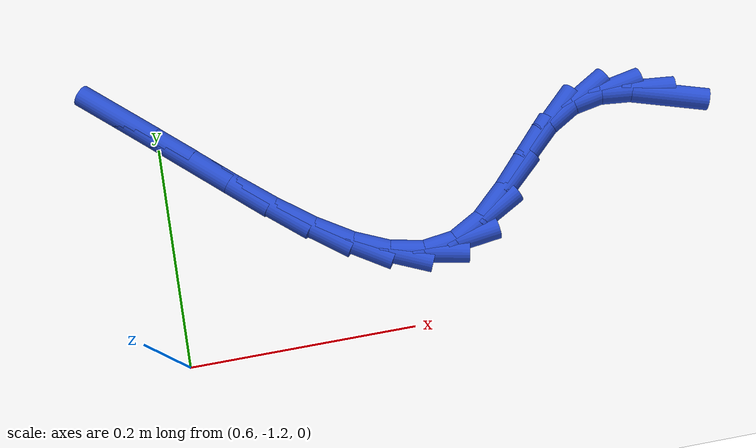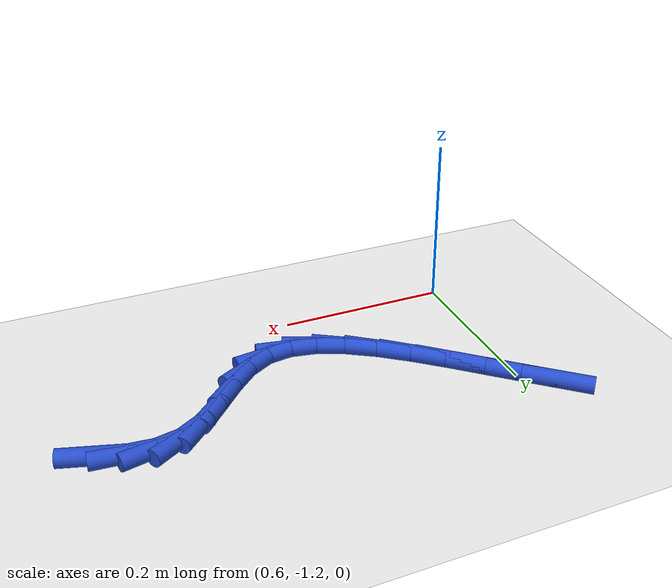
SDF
<sdf version="1.6">
 <world name="default">
  <model name="ground_plane">
   <static>1</static>
   <link name="link">
    <collision name="collision">
     <geometry><plane><normal>0 0 1</normal><size>100 100</size></plane></geometry>
     <surface><friction><ode><mu>100</mu><mu2>50</mu2></ode></friction></surface>
    </collision>
    <visual name="visual">
     <cast_shadows>0</cast_shadows>
     <geometry><plane><normal>0 0 1</normal><size>100 100</size></plane></geometry>
     <material>
      <script><uri>file://media/materials/scripts/gazebo.material</uri><name>Gazebo/WhiteGlow</name></script>
     </material>
    </visual>
   </link>
  </model>
  <model name="line">
   <link name="link_159">
    <pose>1.0616783317139773 -1.034577627770227 0.01 0 1.57 -0.29383155526071275</pose>
    <collision name="collision">
     <geometry><cylinder><radius>0.01</radius><length>0.08</length></cylinder></geometry>
    </collision>
    <visual name="visual">
     <material>
      <script><name>Gazebo/Blue</name><uri>file://media/materials/scripts/gazebo.material</uri></script>
     </material>
     <geometry><cylinder><radius>0.01</radius><length>0.08</length></cylinder></geometry>
    </visual>
   </link>
   <link name="link_160">
    <pose>1.0322120503001326 -1.0256614156718258 0.01 0 1.57 -0.09149893897382105</pose>
    <collision name="collision">
     <geometry><cylinder><radius>0.01</radius><length>0.08</length></cylinder></geometry>
    </collision>
    <visual name="visual">
     <material>
      <script><name>Gazebo/Blue</name><uri>file://media/materials/scripts/gazebo.material</uri></script>
     </material>
     <geometry><cylinder><radius>0.01</radius><length>0.08</length></cylinder></geometry>
    </visual>
   </link>
   <link name="link_161">
    <pose>1.0040524790558807 -1.0230776302213247 0.01 0 1.57 0.20191646864929344</pose>
    <collision name="collision">
     <geometry><cylinder><radius>0.01</radius><length>0.08</length></cylinder></geometry>
    </collision>
    <visual name="visual">
     <material>
      <script><name>Gazebo/Blue</name><uri>file://media/materials/scripts/gazebo.material</uri></script>
     </material>
     <geometry><cylinder><radius>0.01</radius><length>0.08</length></cylinder></geometry>
    </visual>
   </link>
   <link name="link_162">
    <pose>0.9771210370044172 -1.0285906588683793 0.01 0 1.57 0.5358832553762123</pose>
    <collision name="collision">
     <geometry><cylinder><radius>0.01</radius><length>0.08</length></cylinder></geometry>
    </collision>
    <visual name="visual">
     <material>
      <script><name>Gazebo/Blue</name><uri>file://media/materials/scripts/gazebo.material</uri></script>
     </material>
     <geometry><cylinder><radius>0.01</radius><length>0.08</length></cylinder></geometry>
    </visual>
   </link>
   <link name="link_163">
    <pose>0.9513337227911665 -1.0439043886385309 0.01 0 1.57 0.7615660706830352</pose>
    <collision name="collision">
     <geometry><cylinder><radius>0.01</radius><length>0.08</length></cylinder></geometry>
    </collision>
    <visual name="visual">
     <material>
      <script><name>Gazebo/Blue</name><uri>file://media/materials/scripts/gazebo.material</uri></script>
     </material>
     <geometry><cylinder><radius>0.01</radius><length>0.08</length></cylinder></geometry>
    </visual>
   </link>
   <link name="link_164">
    <pose>0.9263388930255073 -1.0677353766381315 0.01 0 1.57 0.8208064459904556</pose>
    <collision name="collision">
     <geometry><cylinder><radius>0.01</radius><length>0.08</length></cylinder></geometry>
    </collision>
    <visual name="visual">
     <material>
      <script><name>Gazebo/Blue</name><uri>file://media/materials/scripts/gazebo.material</uri></script>
     </material>
     <geometry><cylinder><radius>0.01</radius><length>0.08</length></cylinder></geometry>
    </visual>
   </link>
   <link name="link_165">
    <pose>0.9014001611391713 -1.094505806702501 0.01 0 1.57 0.7480122158365172</pose>
    <collision name="collision">
     <geometry><cylinder><radius>0.01</radius><length>0.08</length></cylinder></geometry>
    </collision>
    <visual name="visual">
     <material>
      <script><name>Gazebo/Blue</name><uri>file://media/materials/scripts/gazebo.material</uri></script>
     </material>
     <geometry><cylinder><radius>0.01</radius><length>0.08</length></cylinder></geometry>
    </visual>
   </link>
   <link name="link_166">
    <pose>0.8757513286304951 -1.1183051119455532 0.01 0 1.57 0.5062367291940696</pose>
    <collision name="collision">
     <geometry><cylinder><radius>0.01</radius><length>0.08</length></cylinder></geometry>
    </collision>
    <visual name="visual">
     <material>
      <script><name>Gazebo/Blue</name><uri>file://media/materials/scripts/gazebo.material</uri></script>
     </material>
     <geometry><cylinder><radius>0.01</radius><length>0.08</length></cylinder></geometry>
    </visual>
   </link>
   <link name="link_167">
    <pose>0.8486427102559426 -1.133334898223849 0.01 0 1.57 0.13305660448783968</pose>
    <collision name="collision">
     <geometry><cylinder><radius>0.01</radius><length>0.08</length></cylinder></geometry>
    </collision>
    <visual name="visual">
     <material>
      <script><name>Gazebo/Blue</name><uri>file://media/materials/scripts/gazebo.material</uri></script>
     </material>
     <geometry><cylinder><radius>0.01</radius><length>0.08</length></cylinder></geometry>
    </visual>
   </link>
   <link name="link_168">
    <pose>0.8198244632427631 -1.1371921462138563 0.01 0 1.57 -0.18963404579309756</pose>
    <collision name="collision">
     <geometry><cylinder><radius>0.01</radius><length>0.08</length></cylinder></geometry>
    </collision>
    <visual name="visual">
     <material>
      <script><name>Gazebo/Blue</name><uri>file://media/materials/scripts/gazebo.material</uri></script>
     </material>
     <geometry><cylinder><radius>0.01</radius><length>0.08</length></cylinder></geometry>
    </visual>
   </link>
   <link name="link_169">
    <pose>0.7896240591674941 -1.1313954693450134 0.01 0 1.57 -0.4138564425477237</pose>
    <collision name="collision">
     <geometry><cylinder><radius>0.01</radius><length>0.08</length></cylinder></geometry>
    </collision>
    <visual name="visual">
     <material>
      <script><name>Gazebo/Blue</name><uri>file://media/materials/scripts/gazebo.material</uri></script>
     </material>
     <geometry><cylinder><radius>0.01</radius><length>0.08</length></cylinder></geometry>
    </visual>
   </link>
   <link name="link_170">
    <pose>0.7584010781595942 -1.1176815909082856 0.01 0 1.57 -0.5578236057412483</pose>
    <collision name="collision">
     <geometry><cylinder><radius>0.01</radius><length>0.08</length></cylinder></geometry>
    </collision>
    <visual name="visual">
     <material>
      <script><name>Gazebo/Blue</name><uri>file://media/materials/scripts/gazebo.material</uri></script>
     </material>
     <geometry><cylinder><radius>0.01</radius><length>0.08</length></cylinder></geometry>
    </visual>
   </link>
   <link name="link_171">
    <pose>0.7265151003485228 -1.097787234194638 0.01 0 1.57 -0.6473879698671378</pose>
    <collision name="collision">
     <geometry><cylinder><radius>0.01</radius><length>0.08</length></cylinder></geometry>
    </collision>
    <visual name="visual">
     <material>
      <script><name>Gazebo/Blue</name><uri>file://media/materials/scripts/gazebo.material</uri></script>
     </material>
     <geometry><cylinder><radius>0.01</radius><length>0.08</length></cylinder></geometry>
    </visual>
   </link>
   <link name="link_172">
    <pose>0.6943257058637374 -1.0734491224950347 0.01 0 1.57 -0.6996302567370688</pose>
    <collision name="collision">
     <geometry><cylinder><radius>0.01</radius><length>0.08</length></cylinder></geometry>
    </collision>
    <visual name="visual">
     <material>
      <script><name>Gazebo/Blue</name><uri>file://media/materials/scripts/gazebo.material</uri></script>
     </material>
     <geometry><cylinder><radius>0.01</radius><length>0.08</length></cylinder></geometry>
    </visual>
   </link>
   <link name="link_173">
    <pose>0.6621924748346965 -1.0464039791004414 0.01 0 1.57 -0.7235008811439801</pose>
    <collision name="collision">
     <geometry><cylinder><radius>0.01</radius><length>0.08</length></cylinder></geometry>
    </collision>
    <visual name="visual">
     <material>
      <script><name>Gazebo/Blue</name><uri>file://media/materials/scripts/gazebo.material</uri></script>
     </material>
     <geometry><cylinder><radius>0.01</radius><length>0.08</length></cylinder></geometry>
    </visual>
   </link>
   <link name="link_174">
    <pose>0.6304749873908585 -1.018388527301823 0.01 0 1.57 -0.7244664089711287</pose>
    <collision name="collision">
     <geometry><cylinder><radius>0.01</radius><length>0.08</length></cylinder></geometry>
    </collision>
    <visual name="visual">
     <material>
      <script><name>Gazebo/Blue</name><uri>file://media/materials/scripts/gazebo.material</uri></script>
     </material>
     <geometry><cylinder><radius>0.01</radius><length>0.08</length></cylinder></geometry>
    </visual>
   </link>
   <link name="link_175">
    <pose>0.5994995085000634 -0.9909751908251688 0.01 0 1.57 -0.7195274843752477</pose>
    <collision name="collision">
     <geometry><cylinder><radius>0.01</radius><length>0.08</length></cylinder></geometry>
    </collision>
    <visual name="visual">
     <material>
      <script><name>Gazebo/Blue</name><uri>file://media/materials/scripts/gazebo.material</uri></script>
     </material>
     <geometry><cylinder><radius>0.01</radius><length>0.08</length></cylinder></geometry>
    </visual>
   </link>
   <link name="link_176">
    <pose>0.5693538925948628 -0.9645606300103503 0.01 0 1.57 -0.7162386786650518</pose>
    <collision name="collision">
     <geometry><cylinder><radius>0.01</radius><length>0.08</length></cylinder></geometry>
    </collision>
    <visual name="visual">
     <material>
      <script><name>Gazebo/Blue</name><uri>file://media/materials/scripts/gazebo.material</uri></script>
     </material>
     <geometry><cylinder><radius>0.01</radius><length>0.08</length></cylinder></geometry>
    </visual>
   </link>
  </model>
 </world>
</sdf>
